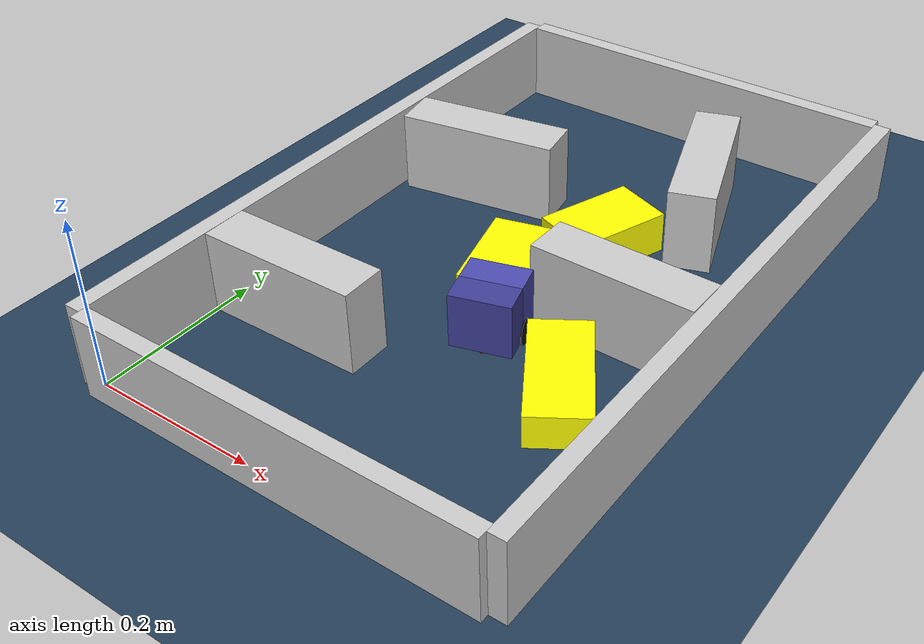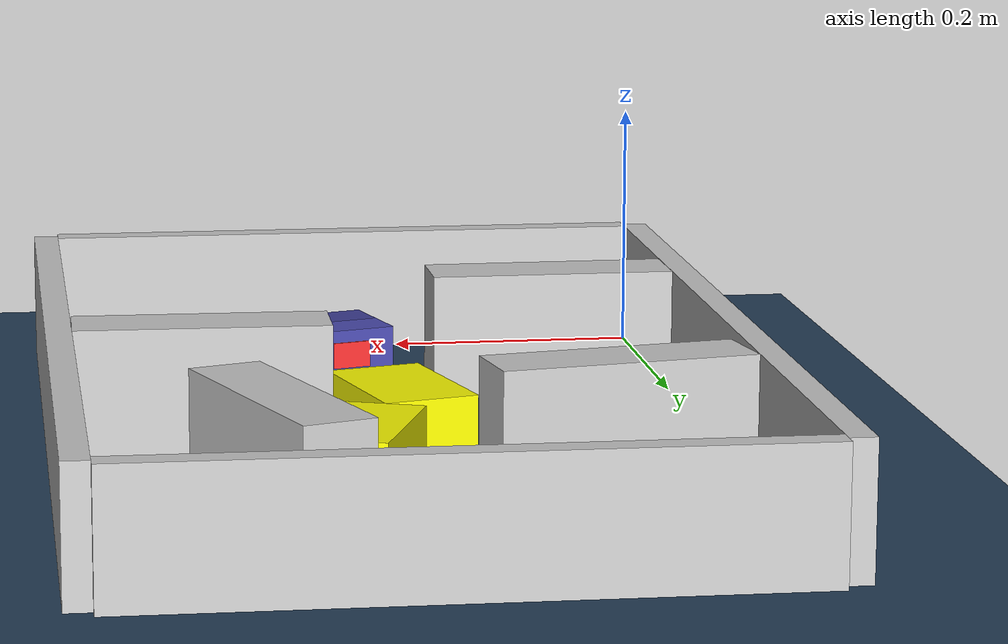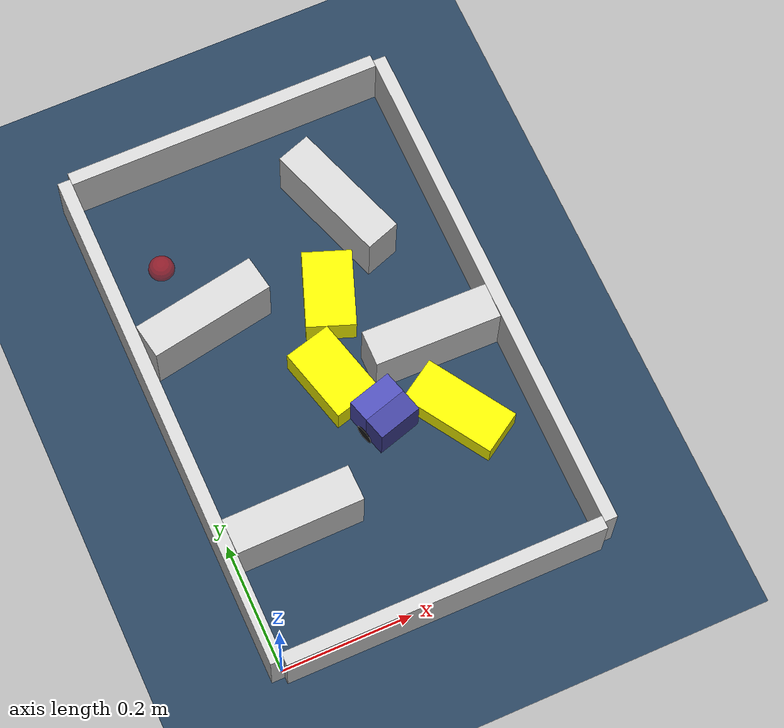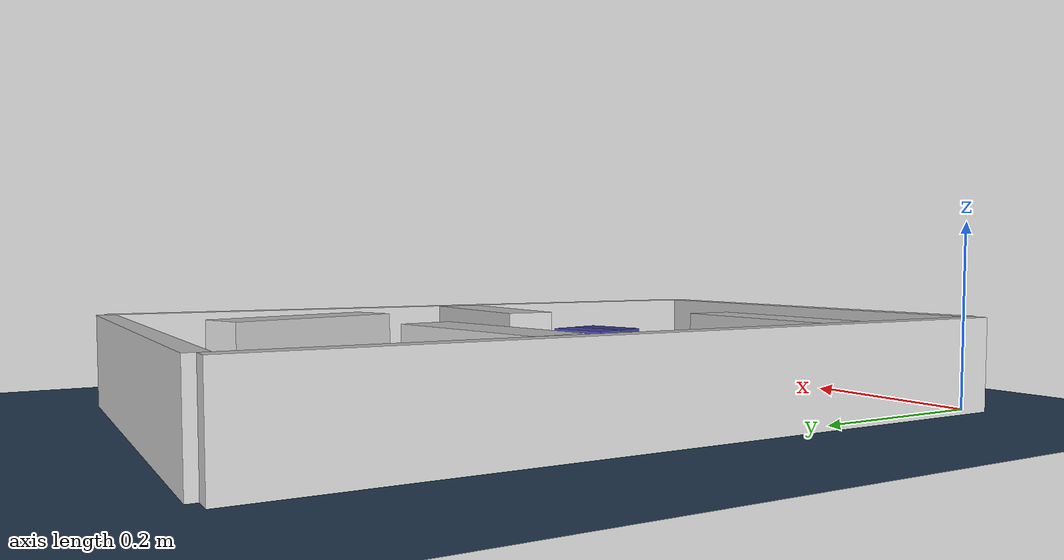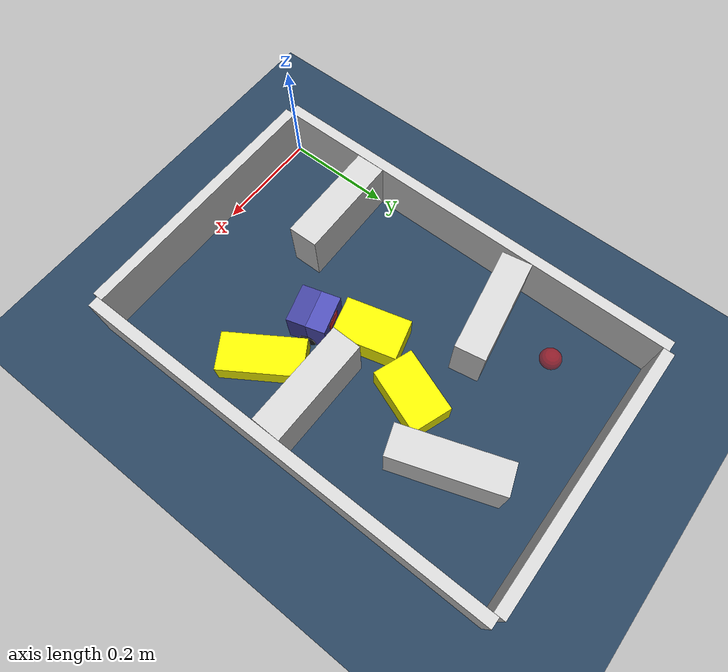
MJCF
<?xml version='1.0' encoding='utf-8'?>
<mujoco model="real_buildable">
  <compiler angle="degree" />
  <option timestep="0.002" integrator="implicitfast" iterations="100" cone="elliptic" />
  <default>
    <geom density="1" />
  </default>
  <asset>
    <texture builtin="gradient" height="3072" rgb1="0.3 0.5 0.7" rgb2="0 0 0" type="skybox" width="512" />
    <texture builtin="checker" height="300" mark="edge" markrgb="0.8 0.8 0.8" name="groundplane" rgb1="0.2 0.3 0.4" rgb2="0.1 0.2 0.3" type="2d" width="300" />
    <material name="groundplane" reflectance="0.2" texrepeat="5 5" texture="groundplane" texuniform="true" />
  </asset>
  <worldbody>
    <light dir="0 0 -1" directional="true" pos="0 0 1.5" />
    <geom name="floor" type="plane" condim="4" friction="0.5 0.005 0.001" material="groundplane" size="0 0 0.05" />
    <body name="walls">
      <geom name="wall_boundary_left" type="box" condim="4" friction="1.0 0.005 0.0001" rgba="0.8 0.8 0.8 1" pos="-0.010000 0.387500 0.050000" euler="0 0 0.000000" size="0.010000 0.397500 0.050000" />
      <geom name="wall_boundary_right" type="box" condim="4" friction="1.0 0.005 0.0001" rgba="0.8 0.8 0.8 1" pos="0.500000 0.387500 0.050000" euler="0 0 0.000000" size="0.010000 0.397500 0.050000" />
      <geom name="wall_boundary_bottom" type="box" condim="4" friction="1.0 0.005 0.0001" rgba="0.8 0.8 0.8 1" pos="0.245000 -0.010000 0.050000" euler="0 0 0.000000" size="0.245000 0.010000 0.050000" />
      <geom name="wall_boundary_top" type="box" condim="4" friction="1.0 0.005 0.0001" rgba="0.8 0.8 0.8 1" pos="0.245000 0.785000 0.050000" euler="0 0 0.000000" size="0.245000 0.010000 0.050000" />
      <geom name="wall_inner_1" type="box" condim="4" friction="1.0 0.005 0.0001" rgba="0.8 0.8 0.8 1" pos="0.097808 0.183074 0.050000" euler="0 0 0.654098" size="0.097500 0.027500 0.050000" />
      <geom name="wall_inner_2" type="box" condim="4" friction="1.0 0.005 0.0001" rgba="0.8 0.8 0.8 1" pos="0.392076 0.360205 0.050000" euler="0 0 -0.908587" size="0.097500 0.027500 0.050000" />
      <geom name="wall_inner_3" type="box" condim="4" friction="1.0 0.005 0.0001" rgba="0.8 0.8 0.8 1" pos="0.101000 0.518000 0.050000" euler="0 0 10.000000" size="0.097500 0.027500 0.050000" />
      <geom name="wall_inner_4" type="box" condim="4" friction="1.0 0.005 0.0001" rgba="0.8 0.8 0.8 1" pos="0.354000 0.608000 0.050000" euler="0 0 109.100000" size="0.097500 0.027500 0.050000" />
    </body>
    <body name="car" pos="0.28258017615819625 0.27952750623955169 0.01" quat="0.59960863683019583 0 0 0.80029337285687574">
      <freejoint name="car_freejoint" />
      <inertial pos="0 0 0.0375" mass="0.35" diaginertia="0.000266 0.000266 0.000286" />
      <geom name="front_chassis_collision" type="box" pos="0.0175 0 0.0375" size="0.0175 0.035 0.0325" rgba="0.3 0.3 0.7 1" />
      <geom name="rear_chassis_collision" type="box" pos="-0.0175 0 0.0375" size="0.0175 0.035 0.0325" rgba="0.25 0.25 0.6 1" />
      <geom name="front_marker" type="box" pos="0.034 0 0.0505" size="0.002 0.015 0.01" rgba="1 0.2 0.2 1" contype="0" conaffinity="0" />
      <body name="rear_support_body" pos="-0.03 0 0.0025">
        <joint name="rear_caster_joint" type="ball" damping="0.0001" />
        <inertial pos="0 0 0" mass="0.025" diaginertia="0.000001 0.000001 0.000001" />
        <geom name="rear_support" type="sphere" pos="0 0 0" size="0.0025" friction="0 0 0" rgba="0.7 0.1 0.1 1" />
      </body>
      <body name="front_support_body" pos="0.03 0 0.0025">
        <joint name="front_caster_joint" type="ball" damping="0.0001" />
        <inertial pos="0 0 0" mass="0.025" diaginertia="0.000001 0.000001 0.000001" />
        <geom name="front_support" type="sphere" pos="0 0 0" size="0.0025" friction="0 0 0" rgba="0.1 0.7 0.1 1" />
      </body>
      <body name="left_wheel" pos="0 0.0375 0.015">
        <inertial pos="0 0 0" mass="0.05" diaginertia="0.000003 0.000006 0.000003" />
        <joint name="left_wheel_joint" type="hinge" axis="0 1 0" damping="0.01" armature="0.0001" />
        <geom name="left_wheel_collision" type="cylinder" size="0.015 0.0005" euler="90 0 0" rgba="0.1 0.1 0.1 1" />
      </body>
      <body name="right_wheel" pos="0 -0.0375 0.015">
        <inertial pos="0 0 0" mass="0.05" diaginertia="0.000003 0.000006 0.000003" />
        <joint name="right_wheel_joint" type="hinge" axis="0 1 0" damping="0.01" armature="0.0001" />
        <geom name="right_wheel_collision" type="cylinder" size="0.015 0.0005" euler="90 0 0" rgba="0.1 0.1 0.1 1" />
      </body>
    </body>
    <body name="obstacle_0_movable">
      <geom name="obstacle_0_movable" condim="4" pos="0.24040661446521419 0.36920775689973717 0.025000000000000001" friction="1 0.005 0.0001" rgba="1 1 0 1" size="0.037500 0.060000 0.025000" type="box" mass="0.1" quat="0.99162533325723157 0 0 0.12914797111253573" />
      <joint type="free" />
    </body>
    <body name="obstacle_1_movable">
      <geom name="obstacle_1_movable" condim="4" pos="0.28804636098039987 0.49084049048276895 0.025000000000000001" friction="1 0.005 0.0001" rgba="1 1 0 1" size="0.037500 0.060000 0.025000" type="box" mass="0.1" quat="0.98431531220127277 0 0 -0.17641815713273648" />
      <joint type="free" />
    </body>
    <body name="obstacle_2_movable">
      <geom name="obstacle_2_movable" condim="4" pos="0.3885804887110727 0.24921299091405039 0.02" friction="1 0.005 0.0001" rgba="1 1 0 1" size="0.035000 0.075000 0.020000" type="box" mass="0.1" quat="0.96023212548351566 0 0 0.27920291042431816" />
      <joint type="free" />
    </body>
    <site name="goal" type="sphere" pos="0.080000 0.640000 0.0" size="0.02" rgba="1 0 0 0.5" />
  </worldbody>
  <actuator>
    <velocity name="left_wheel_drive" joint="left_wheel_joint" ctrlrange="-25 25" kv="0.75" forcerange="-0.5 0.5" />
    <velocity name="right_wheel_drive" joint="right_wheel_joint" ctrlrange="-25 25" kv="0.75" forcerange="-0.5 0.5" />
  </actuator>
</mujoco>
